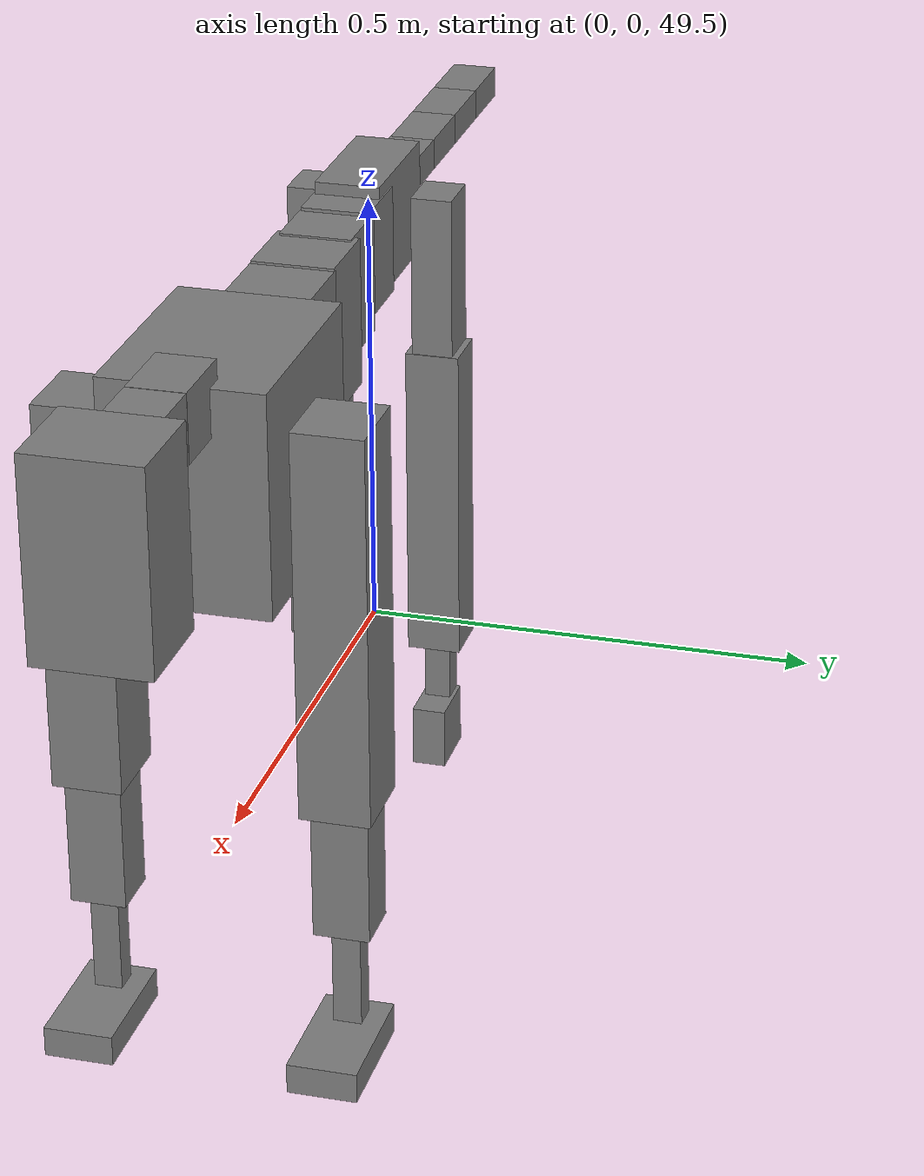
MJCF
<mujoco model="dog">

    <default>
        <joint armature="0.02" stiffness="1" damping="0.2" limited="true"/>
        <geom condim="3" friction="1 0.05 0.05" margin="0.01"/>
        <motor ctrllimited="true" ctrlrange="-1.0 1.0" forcelimited="true" gear="50"/>
    </default>

    <compiler inertiafromgeom="true" angle="radian"/>

    <option timestep="0.016" iterations="50" tolerance="1e-10" solver="Newton" jacobian="dense" cone="pyramidal"/>

    <size nconmax="20000" njmax="60000" nstack="5000000"/>
    <visual>
        <map force="0.1" zfar="30"/>
        <rgba haze="0.15 0.25 0.35 1"/>
        <quality shadowsize="2048"/>
        <global offwidth="800" offheight="800"/>
    </visual>

    <asset>
        <texture type="skybox" builtin="gradient" rgb1="0.3 0.5 0.7" rgb2="0 0 0" width="512" height="512"/>
        <texture name="texplane" type="2d" builtin="checker" rgb1=".2 .3 .4" rgb2=".1 0.15 0.2" width="512" height="512"
                 mark="cross" markrgb=".8 .8 .8"/>
        <texture name="texgeom" type="cube" builtin="flat" mark="cross" width="127" height="1278" rgb1="0.8 0.6 0.4"
                 rgb2="0.8 0.6 0.4" markrgb="1 1 1" random="0.01"/>

        <material name="matplane" reflectance="0.3" texture="texplane" texrepeat="1 1" texuniform="true"/>
        <material name="matgeom" texture="texgeom" texuniform="true" rgba="0.8 0.6 .4 1"/>
    </asset>

    <worldbody>
        <geom name="floor" pos="0 0 0" size="0 0 .25" type="plane" material="matplane" condim="3"/>

        <light directional="false" diffuse=".2 .2 .2" specular="0 0 0" pos="0 0 5" dir="0 0 -1" castshadow="false"/>
        <light mode="targetbodycom" target="torso" directional="false" diffuse=".8 .8 .8" specular="0.3 0.3 0.3"
               pos="0 0 4.0" dir="0 0 -1"/>

        <body name="root" pos="0 0 50">
            <freejoint name="root_1"/>
            <geom type="box" pos="0 0 -0.02" size="0.0774  0.0358  0.063" density="2030"/>

            <body name="spine1" pos="0.054 0 0">
                <joint name="spine1_y" axis="0 1 0" range="0 0.7" limited="true"/>
                <geom type="box" pos="0.02375 0 -0.03" size="0.04375  0.0375  0.05985" density="2030"/>

                <body name="spine2" pos="0.0612 0 0">
                    <joint name="spine2_y" axis="0 1 0" range="-0.15 0.15" limited="true"/>
                    <geom type="box" pos="0.03555  0  -0.04" size="0.04055  0.039  0.06615" density="2030"/>

                    <body name="spine3" pos="0.0730 0 0">
                        <joint name="spine3_y" axis="0 1 0" range="-0.15 0.15" limited="true"/>
                        <geom type="box" pos="0.03555  0  -0.057" size="0.04555  0.0445  0.081" density="2030"/>

                        <body name="spine4" pos="0.0780 0 0">
                            <joint name="spine4_y" axis="0 1 0" range="-0.15 0.15" limited="true"/>
                            <geom type="box" pos="0.05265  0  -0.07" size="0.05265  0.045  0.09135" density="2030"/>

                            <body name="torso" pos="0.1082 0 0">
                                <joint name="torso_y" axis="0 1 0" range="-0.15 0.15" limited="true"/>
                                <geom type="box" pos="0.11925  0  -0.085" size="0.11925  0.085  0.11745"
                                      density="2030"/>

                                <body name="neck1" pos="0.2160  0   0.0180">
                                    <joint name="neck1_y" axis="0 1 0" range="-1.2  -1" limited="true"/>
                                    <geom type="box" pos="0.0423  0  0" size="0.0423  0.03  0.036" density="2325"/>

                                    <body name="neck2" pos="0.0853  0  0">
                                        <joint name="neck2_y" axis="0 1 0" range="0.1  0" limited="true"/>
                                        <geom type="box" pos="0.0423  0  0" size="0.0423  0.03  0.036" density="2325"/>

                                        <body name="head" pos="0.0853  0  0">
                                            <joint name="head_y" axis="0 1 0" range="-0.3  -0.2" limited="true"/>
                                            <geom type="box" pos="0.0531  0  -0.055" size="0.0531  0.06  0.1044"
                                                  density="4030"/>

                                        </body>
                                    </body>
                                </body>

                                <body name="front_shoulder" pos="0.156  0   -0.0480">
                                    <joint name="front_shoulder_y" axis="0 1 0" range="-1 1.5" limited="true"/>
                                    <geom type="box" pos="0 0.13 -0.1822" size="0.0434  0.0371  0.2089" density="1158"/>
                                    <geom type="box" pos="0 -0.13 -0.1822" size="0.0434  0.0371  0.2089"
                                          density="1158"/>

                                    <body name="front_elbow" pos="0  0  -0.3645">
                                        <joint name="front_elbow_y" axis="0 1 0" range="-2 0" limited="true"/>
                                        <geom type="box" pos="0 0.13 -0.0839" size="0.0291  0.0297  0.0839"
                                              density="1081"/>
                                        <geom type="box" pos="0 -0.13 -0.0839" size="0.0291  0.0297  0.0839"
                                              density="1081"/>

                                        <body name="front_wrist" pos="0  0  -0.1677">
                                            <joint name="front_wrist_y" axis="0 1 0" range="-0.2 0" limited="true"/>
                                            <geom type="box" pos="0 0.13 -0.0621" size="0.0135  0.0150  0.0752"
                                                  density="1664"/>
                                            <geom type="box" pos="0 -0.13 -0.0621" size="0.0135  0.0150  0.0752"
                                                  density="1664"/>

                                            <body name="front_finger_end" pos="0  0  -0.1242">
                                                <joint name="front_finger_y" axis="0 1 0" range="-0.4 1"
                                                       limited="true"/>
                                                <geom type="box" pos="0.0368  0.13  -0.0013"
                                                      size="0.0674  0.0368  0.0163" density="1515"/>
                                                <geom type="box" pos="0.0368  -0.13  -0.0013"
                                                      size="0.0674  0.0368  0.0163" density="1515"/>

                                            </body>

                                        </body>
                                    </body>
                                </body>

                            </body>
                        </body>
                    </body>
                </body>
            </body>

            <body name="back_hip" pos="-0.03 0 -0.018">
                <joint name="back_hip_y" axis="0 1 0" range="-1.5 0.3" limited="true"/>
                <geom type="box" pos="0 0.07 -0.0872" size="0.0291  0.0228  0.1100" density="1154"/>
                <geom type="box" pos="0 -0.07 -0.0872" size="0.0291  0.0228  0.1100" density="1154"/>

                <body name="back_knee" pos="0  0  -0.1743">
                    <joint name="back_knee_y" axis="0 1 0" range="0 2.8" limited="true"/>
                    <geom type="box" pos="0 0.07 -0.1658" size="0.0305  0.0300  0.1814" density="1227"/>
                    <geom type="box" pos="0 -0.07 -0.1658" size="0.0305  0.0300  0.1814" density="1227"/>

                    <body name="back_ankle" pos="0  0  -0.3316">
                        <joint name="back_ankle_y" axis="0 1 0" range="-2.2 0" limited="true"/>
                        <geom type="box" pos="0 0.07 -0.0493" size="0.0145  0.0145  0.0605" density="1284"/>
                        <geom type="box" pos="0 -0.07 -0.0493" size="0.0145  0.0145  0.0605" density="1284"/>

                        <body name="back_toe_end" pos="0  0  -0.0985">
                            <joint name="back_toe_y" axis="0 1 0" range="-0.4 1" limited="true"/>
                            <geom type="box" pos="0.0188  0.07  -0.0196" size="0.0345  0.0188  0.0346" density="1515"/>
                            <geom type="box" pos="0.0188  -0.07  -0.0196" size="0.0345  0.0188  0.0346" density="1515"/>

                        </body>
                    </body>
                </body>
            </body>

            <body name="tail1" pos="-0.074 0 -0.006">
                <joint name="tail1_y" axis="0 1 0" range="-0.2 0.2" limited="true"/>
                <geom type="box" pos="-0.0536  0  0" size="0.045  0.025  0.0175" density="1587"/>

                <body name="tail2" pos="-0.09 0 0">
                    <joint name="tail2_y" axis="0 1 0" range="-0.2 0.2" limited="true"/>
                    <geom type="box" pos="-0.0536  0  0" size="0.045  0.025  0.0175" density="1587"/>

                    <body name="tail3" pos="-0.09 0 0">
                        <joint name="tail3_y" axis="0 1 0" range="-0.2 0.2" limited="true"/>
                        <geom type="box" pos="-0.0536  0  0" size="0.045  0.025  0.0175" density="1587"/>

                        <body name="tail4" pos="-0.09 0 0">
                            <joint name="tail4_y" axis="0 1 0" range="-0.2 0.2" limited="true"/>
                            <geom type="box" pos="-0.0536  0  0" size="0.045  0.025  0.0175" density="1587"/>

                        </body>
                    </body>
                </body>
            </body>
        </body>
    </worldbody>

    <actuator>
        <motor joint="spine1_y" forcerange="-150 150     "/>
        <motor joint="spine2_y" forcerange="-150 150     "/>
        <motor joint="spine3_y" forcerange="-150 150     "/>
        <motor joint="spine4_y" forcerange="-150 150     "/>
        <motor joint="torso_y" forcerange="-150 150     "/>
        <motor joint="neck1_y" forcerange="-100 100       "/>
        <motor joint="neck2_y" forcerange="-100 100       "/>
        <motor joint="head_y" forcerange="-150 150       "/>
        <motor joint="front_shoulder_y" forcerange="-157.39 189.88"/>
        <motor joint="front_elbow_y" forcerange="-175.81 140.47"/>
        <motor joint="front_wrist_y" forcerange="-51.17 68.70"/>
        <motor joint="front_finger_y" forcerange="-86.03 70.03"/>
        <motor joint="back_hip_y" forcerange="-204.49 299.38"/>
        <motor joint="back_knee_y" forcerange="-380.47 256.44"/>
        <motor joint="back_angle_y" forcerange="-58.77 72.90"/>
        <motor joint="back_toe_y" forcerange="-26.52 44.16"/>
        <motor joint="tail1_y" forcerange="-50 50     "/>
        <motor joint="tail2_y" forcerange="-50 50     "/>
        <motor joint="tail3_y" forcerange="-50 50     "/>
        <motor joint="tail4_y" forcerange="-50 50     "/>
    </actuator>
</mujoco>
